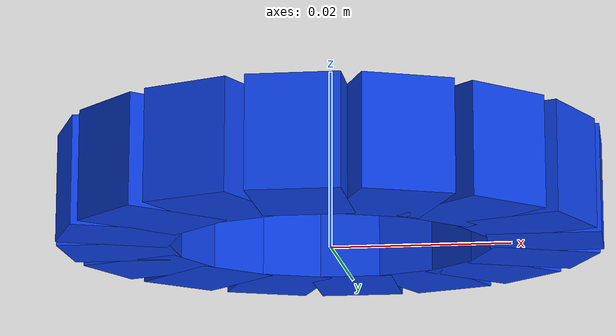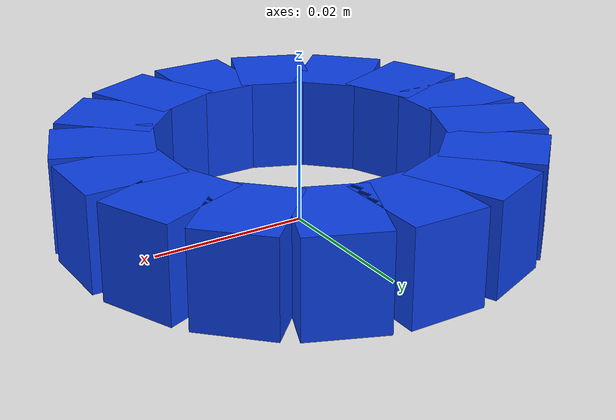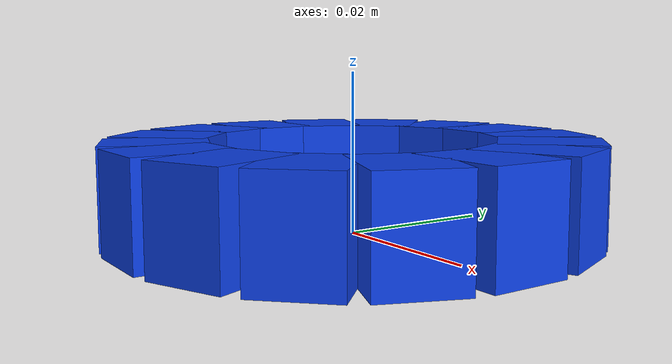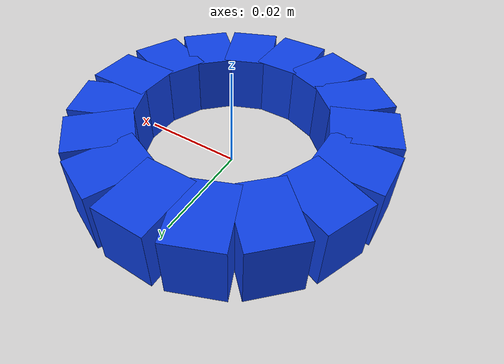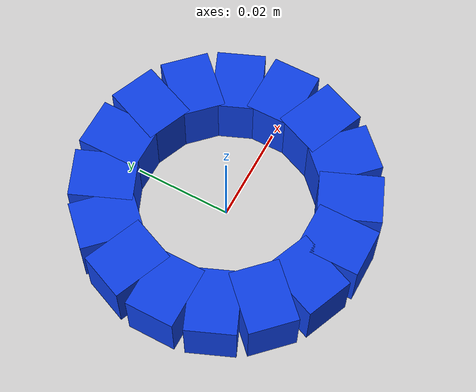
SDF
<?xml version='1.0'?>
<sdf version='1.10'>
  <model name='blue_ring'>
    <link name='link'>
      <inertial>
        <mass>0.04</mass>
        <!-- 속 빈 원통 근사: izz = m/2*(Ro^2+Ri^2), ixx=iyy = m/12*(3*(Ro^2+Ri^2)+h^2) -->
        <inertia>
          <ixx>1.254e-05</ixx><ixy>0</ixy><ixz>0</ixz>
          <iyy>1.254e-05</iyy><iyz>0</iyz><izz>2.413e-05</izz>
        </inertia>
      </inertial>
      <collision name='ring_col_0'>
        <pose>0.02375 0.00000 0.00600 0 0 0.00000</pose>
        <geometry><box><size>0.01250 0.00980 0.01200</size></box></geometry>
      </collision>
      <visual name='ring_vis_0'>
        <pose>0.02375 0.00000 0.00600 0 0 0.00000</pose>
        <geometry><box><size>0.01250 0.00980 0.01200</size></box></geometry>
        <material>
          <ambient>0.05 0.25 0.9 1</ambient>
          <diffuse>0.05 0.25 0.9 1</diffuse>
        </material>
      </visual>
      <collision name='ring_col_1'>
        <pose>0.02194 0.00909 0.00600 0 0 0.39270</pose>
        <geometry><box><size>0.01250 0.00980 0.01200</size></box></geometry>
      </collision>
      <visual name='ring_vis_1'>
        <pose>0.02194 0.00909 0.00600 0 0 0.39270</pose>
        <geometry><box><size>0.01250 0.00980 0.01200</size></box></geometry>
        <material>
          <ambient>0.05 0.25 0.9 1</ambient>
          <diffuse>0.05 0.25 0.9 1</diffuse>
        </material>
      </visual>
      <collision name='ring_col_2'>
        <pose>0.01679 0.01679 0.00600 0 0 0.78540</pose>
        <geometry><box><size>0.01250 0.00980 0.01200</size></box></geometry>
      </collision>
      <visual name='ring_vis_2'>
        <pose>0.01679 0.01679 0.00600 0 0 0.78540</pose>
        <geometry><box><size>0.01250 0.00980 0.01200</size></box></geometry>
        <material>
          <ambient>0.05 0.25 0.9 1</ambient>
          <diffuse>0.05 0.25 0.9 1</diffuse>
        </material>
      </visual>
      <collision name='ring_col_3'>
        <pose>0.00909 0.02194 0.00600 0 0 1.17810</pose>
        <geometry><box><size>0.01250 0.00980 0.01200</size></box></geometry>
      </collision>
      <visual name='ring_vis_3'>
        <pose>0.00909 0.02194 0.00600 0 0 1.17810</pose>
        <geometry><box><size>0.01250 0.00980 0.01200</size></box></geometry>
        <material>
          <ambient>0.05 0.25 0.9 1</ambient>
          <diffuse>0.05 0.25 0.9 1</diffuse>
        </material>
      </visual>
      <collision name='ring_col_4'>
        <pose>0.00000 0.02375 0.00600 0 0 1.57080</pose>
        <geometry><box><size>0.01250 0.00980 0.01200</size></box></geometry>
      </collision>
      <visual name='ring_vis_4'>
        <pose>0.00000 0.02375 0.00600 0 0 1.57080</pose>
        <geometry><box><size>0.01250 0.00980 0.01200</size></box></geometry>
        <material>
          <ambient>0.05 0.25 0.9 1</ambient>
          <diffuse>0.05 0.25 0.9 1</diffuse>
        </material>
      </visual>
      <collision name='ring_col_5'>
        <pose>-0.00909 0.02194 0.00600 0 0 1.96350</pose>
        <geometry><box><size>0.01250 0.00980 0.01200</size></box></geometry>
      </collision>
      <visual name='ring_vis_5'>
        <pose>-0.00909 0.02194 0.00600 0 0 1.96350</pose>
        <geometry><box><size>0.01250 0.00980 0.01200</size></box></geometry>
        <material>
          <ambient>0.05 0.25 0.9 1</ambient>
          <diffuse>0.05 0.25 0.9 1</diffuse>
        </material>
      </visual>
      <collision name='ring_col_6'>
        <pose>-0.01679 0.01679 0.00600 0 0 2.35619</pose>
        <geometry><box><size>0.01250 0.00980 0.01200</size></box></geometry>
      </collision>
      <visual name='ring_vis_6'>
        <pose>-0.01679 0.01679 0.00600 0 0 2.35619</pose>
        <geometry><box><size>0.01250 0.00980 0.01200</size></box></geometry>
        <material>
          <ambient>0.05 0.25 0.9 1</ambient>
          <diffuse>0.05 0.25 0.9 1</diffuse>
        </material>
      </visual>
      <collision name='ring_col_7'>
        <pose>-0.02194 0.00909 0.00600 0 0 2.74889</pose>
        <geometry><box><size>0.01250 0.00980 0.01200</size></box></geometry>
      </collision>
      <visual name='ring_vis_7'>
        <pose>-0.02194 0.00909 0.00600 0 0 2.74889</pose>
        <geometry><box><size>0.01250 0.00980 0.01200</size></box></geometry>
        <material>
          <ambient>0.05 0.25 0.9 1</ambient>
          <diffuse>0.05 0.25 0.9 1</diffuse>
        </material>
      </visual>
      <collision name='ring_col_8'>
        <pose>-0.02375 0.00000 0.00600 0 0 3.14159</pose>
        <geometry><box><size>0.01250 0.00980 0.01200</size></box></geometry>
      </collision>
      <visual name='ring_vis_8'>
        <pose>-0.02375 0.00000 0.00600 0 0 3.14159</pose>
        <geometry><box><size>0.01250 0.00980 0.01200</size></box></geometry>
        <material>
          <ambient>0.05 0.25 0.9 1</ambient>
          <diffuse>0.05 0.25 0.9 1</diffuse>
        </material>
      </visual>
      <collision name='ring_col_9'>
        <pose>-0.02194 -0.00909 0.00600 0 0 3.53429</pose>
        <geometry><box><size>0.01250 0.00980 0.01200</size></box></geometry>
      </collision>
      <visual name='ring_vis_9'>
        <pose>-0.02194 -0.00909 0.00600 0 0 3.53429</pose>
        <geometry><box><size>0.01250 0.00980 0.01200</size></box></geometry>
        <material>
          <ambient>0.05 0.25 0.9 1</ambient>
          <diffuse>0.05 0.25 0.9 1</diffuse>
        </material>
      </visual>
      <collision name='ring_col_10'>
        <pose>-0.01679 -0.01679 0.00600 0 0 3.92699</pose>
        <geometry><box><size>0.01250 0.00980 0.01200</size></box></geometry>
      </collision>
      <visual name='ring_vis_10'>
        <pose>-0.01679 -0.01679 0.00600 0 0 3.92699</pose>
        <geometry><box><size>0.01250 0.00980 0.01200</size></box></geometry>
        <material>
          <ambient>0.05 0.25 0.9 1</ambient>
          <diffuse>0.05 0.25 0.9 1</diffuse>
        </material>
      </visual>
      <collision name='ring_col_11'>
        <pose>-0.00909 -0.02194 0.00600 0 0 4.31969</pose>
        <geometry><box><size>0.01250 0.00980 0.01200</size></box></geometry>
      </collision>
      <visual name='ring_vis_11'>
        <pose>-0.00909 -0.02194 0.00600 0 0 4.31969</pose>
        <geometry><box><size>0.01250 0.00980 0.01200</size></box></geometry>
        <material>
          <ambient>0.05 0.25 0.9 1</ambient>
          <diffuse>0.05 0.25 0.9 1</diffuse>
        </material>
      </visual>
      <collision name='ring_col_12'>
        <pose>-0.00000 -0.02375 0.00600 0 0 4.71239</pose>
        <geometry><box><size>0.01250 0.00980 0.01200</size></box></geometry>
      </collision>
      <visual name='ring_vis_12'>
        <pose>-0.00000 -0.02375 0.00600 0 0 4.71239</pose>
        <geometry><box><size>0.01250 0.00980 0.01200</size></box></geometry>
        <material>
          <ambient>0.05 0.25 0.9 1</ambient>
          <diffuse>0.05 0.25 0.9 1</diffuse>
        </material>
      </visual>
      <collision name='ring_col_13'>
        <pose>0.00909 -0.02194 0.00600 0 0 5.10509</pose>
        <geometry><box><size>0.01250 0.00980 0.01200</size></box></geometry>
      </collision>
      <visual name='ring_vis_13'>
        <pose>0.00909 -0.02194 0.00600 0 0 5.10509</pose>
        <geometry><box><size>0.01250 0.00980 0.01200</size></box></geometry>
        <material>
          <ambient>0.05 0.25 0.9 1</ambient>
          <diffuse>0.05 0.25 0.9 1</diffuse>
        </material>
      </visual>
      <collision name='ring_col_14'>
        <pose>0.01679 -0.01679 0.00600 0 0 5.49779</pose>
        <geometry><box><size>0.01250 0.00980 0.01200</size></box></geometry>
      </collision>
      <visual name='ring_vis_14'>
        <pose>0.01679 -0.01679 0.00600 0 0 5.49779</pose>
        <geometry><box><size>0.01250 0.00980 0.01200</size></box></geometry>
        <material>
          <ambient>0.05 0.25 0.9 1</ambient>
          <diffuse>0.05 0.25 0.9 1</diffuse>
        </material>
      </visual>
      <collision name='ring_col_15'>
        <pose>0.02194 -0.00909 0.00600 0 0 5.89049</pose>
        <geometry><box><size>0.01250 0.00980 0.01200</size></box></geometry>
      </collision>
      <visual name='ring_vis_15'>
        <pose>0.02194 -0.00909 0.00600 0 0 5.89049</pose>
        <geometry><box><size>0.01250 0.00980 0.01200</size></box></geometry>
        <material>
          <ambient>0.05 0.25 0.9 1</ambient>
          <diffuse>0.05 0.25 0.9 1</diffuse>
        </material>
      </visual>
    </link>
  </model>
</sdf>
